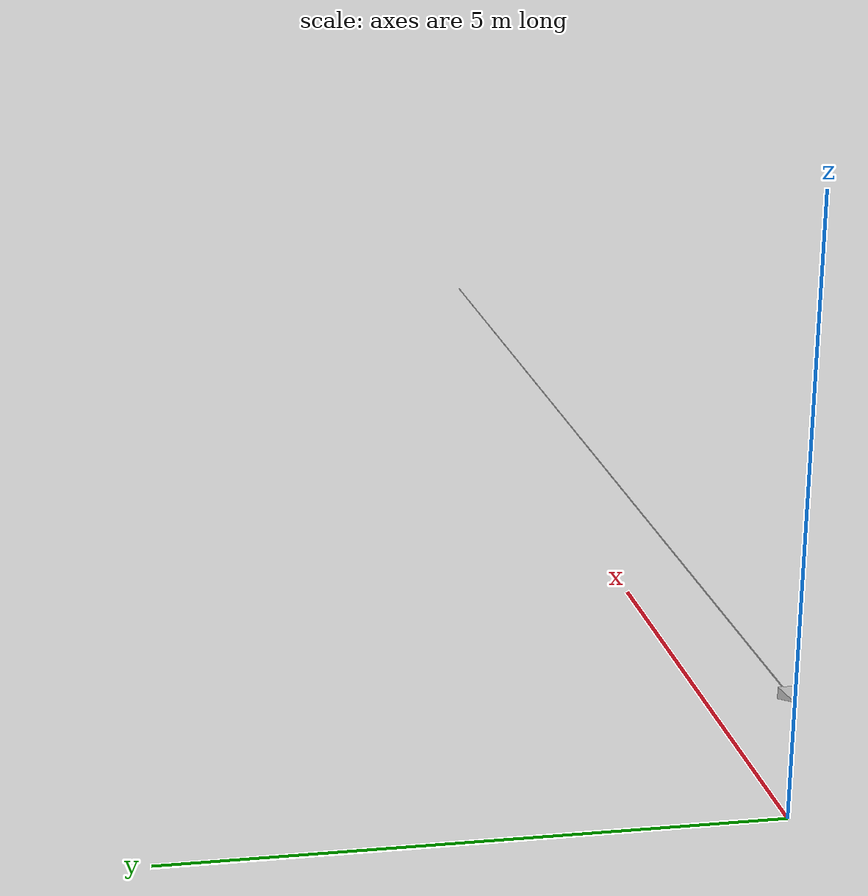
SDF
<?xml version="1.0"?>
<sdf version="1.6">
  <model name='camera_array'>
    <static>true</static>
    <link name='camera_centroid_Nikon_H_1'>
      <pose>0 0 1 0 0 0</pose>
      <visual name='visual'>
        <geometry>
          <mesh>
            <uri>file://frustum.stl</uri>
            <scale>0.05 0.05 0.05</scale>
          </mesh>
        </geometry>
      </visual>
      <sensor type="camera" name="camera_Nikon_H_1">
        <always_on>1</always_on>
        <visualize>true</visualize>
        <update_rate>25</update_rate>
        <camera name="camera_name_Nikon_H_1">
          <image>
            <width>640</width>
            <height>480</height>
            <format>R8G8B8</format>
          </image>
        </camera>
        <plugin name="camera_plugin" filename="libgazebo_ros_camera.so">
          <frame_name>camera_frame_1</frame_name>
        </plugin>
      </sensor>
    </link>

  </model>
</sdf>
